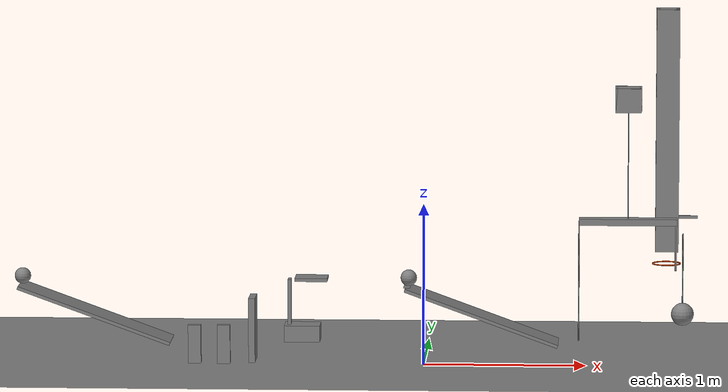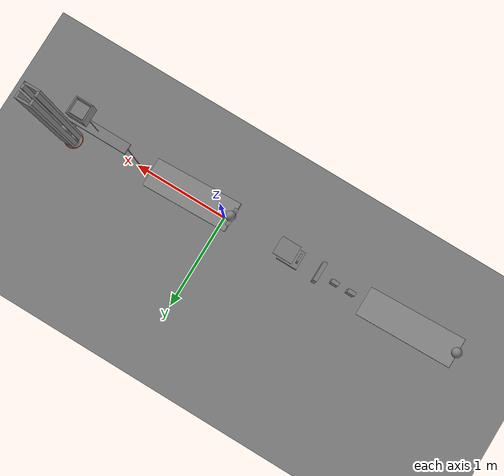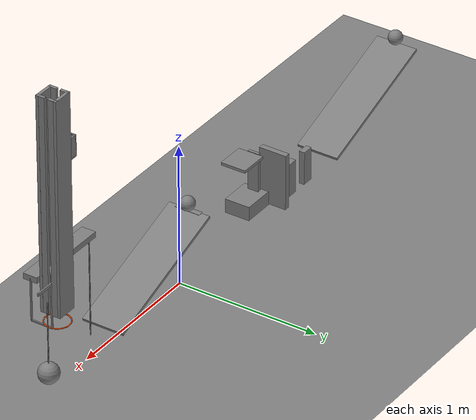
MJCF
<mujoco model="gravity_chain_with_level_starting_seat">
  <compiler angle="radian"/>
  <option timestep="0.002"/>
  <worldbody>
    <geom name="floor" type="plane" size="12 12 0.1" friction="0.7 0 0"/>
    <body name="ramp1">
      <geom name="ramp1" type="box" pos="-2.03015 0 0.311613" size="0.5 0.15 0.01" euler="0 0.349066 0" friction="0.7 0 0" solref="0.01 0.690107"/>
    </body>
    <body name="ball1" pos="-2.47948 0 0.539005">
      <freejoint/>
      <geom name="ball1" type="sphere" pos="0 0 0" size="0.05" mass="0.2" condim="6" friction="0.7 0 0" solref="0.01 0.690107"/>
    </body>
    <body name="domino1" pos="-1.41689 0 0.12">
      <freejoint/>
      <geom name="domino1" type="box" pos="0 0 0" size="0.04 0.02 0.12" mass="0.25" friction="0.7 0 0" solref="0.01 0.690107"/>
    </body>
    <body name="domino2" pos="-1.23689 0 0.12">
      <freejoint/>
      <geom name="domino2" type="box" pos="0 0 0" size="0.04 0.02 0.12" mass="0.25" friction="0.7 0 0" solref="0.01 0.690107"/>
    </body>
    <body name="flap1" pos="-1.05689 0 0.02">
      <joint name="flap1_hinge" type="hinge" pos="0 0 0" axis="0 1 0" limited="true" range="0 1.13446" damping="0.04"/>
      <geom name="flap1" type="box" pos="0 0 0.2" size="0.02 0.1 0.2" mass="0.3" friction="0.7 0 0" solref="0.01 0.690107"/>
    </body>
    <body name="cart1" pos="-0.746887 0 0.2">
      <joint name="cart1_slide" type="slide" pos="0 0 0" axis="1 0 0" limited="true" range="0 0.58" damping="0.2"/>
      <geom name="cart1" type="box" pos="0 0 0" size="0.11 0.09 0.05" mass="0.5" friction="0.7 0 0" solref="0.01 0.690107"/>
      <geom name="cart1 pusher post" type="box" pos="-0.08 0 0.19" size="0.01 0.04 0.14" mass="0" friction="0.7 0 0" solref="0.01 0.690107"/>
      <geom name="cart1 pusher arm" type="box" pos="0.055 0 0.335" size="0.1 0.09 0.01" mass="0" friction="0.7 0 0" solref="0.01 0.690107"/>
    </body>
    <body name="ramp2">
      <geom name="ramp2" type="box" pos="0.357438 0 0.311613" size="0.5 0.15 0.01" euler="0 0.349066 0" friction="0.7 0 0" solref="0.01 0.690107"/>
    </body>
    <body name="ball2 start seat">
      <geom name="ball2 start seat" type="box" pos="-0.101887 0 0.491005" size="0.02 0.09 0.001" friction="0.7 0 0" solref="0.01 0.690107"/>
    </body>
    <body name="ball2" pos="-0.0918872 0 0.542005">
      <freejoint/>
      <geom name="ball2" type="sphere" pos="0 0 0" size="0.05" mass="0.2" condim="6" friction="0.7 0 0" solref="0.01 0.690107"/>
    </body>
    <body name="lever1" pos="1.2547 0 0.9">
      <joint name="lever1_hinge" type="hinge" pos="0 0 0" axis="0 1 0" limited="true" range="-0.785398 0" stiffness="0.55" springref="-0.785398" damping="0.04"/>
      <geom name="lever1" type="box" pos="0 0 0" size="0.3 0.05 0.02" mass="0.5" friction="0.7 0 0" solref="0.01 0.690107"/>
      <geom name="lever1 striker" type="capsule" size="0.004" fromto="-0.3 0 0 -0.3 0 -0.74" mass="0" friction="0.7 0 0" solref="0.01 0.690107"/>
      <geom name="lever1 counterweight mast" type="capsule" size="0.003" fromto="0 0 0 0 0 0.685" mass="0" friction="0.7 0 0" solref="0.01 0.690107"/>
      <geom name="lever1 cradle base" type="box" pos="0 0 0.685" size="0.08 0.08 0.005" mass="0" friction="0.7 0 0" solref="0.01 0.690107"/>
      <geom name="lever1 cradle near wall" type="box" pos="-0.075 0 0.755" size="0.005 0.08 0.075" mass="0" friction="0.7 0 0" solref="0.01 0.690107"/>
      <geom name="lever1 cradle far wall" type="box" pos="0.075 0 0.755" size="0.005 0.08 0.075" mass="0" friction="0.7 0 0" solref="0.01 0.690107"/>
      <geom name="lever1 cradle left wall" type="box" pos="0 0.075 0.755" size="0.08 0.005 0.075" mass="0" friction="0.7 0 0" solref="0.01 0.690107"/>
      <geom name="lever1 cradle right wall" type="box" pos="0 -0.075 0.755" size="0.08 0.005 0.075" mass="0" friction="0.7 0 0" solref="0.01 0.690107"/>
      <geom name="lever1 launch drop" type="box" pos="0.295 0 -0.15" size="0.005 0.005 0.15" mass="0" friction="0.7 0 0" solref="0.01 0.690107"/>
      <geom name="lever1 launch bridge" type="box" pos="0.295 0.075 -0.3" size="0.005 0.075 0.005" mass="0" friction="0.7 0 0" solref="0.01 0.690107"/>
      <geom name="lever1 launch riser" type="box" pos="0.295 0.15 -0.15" size="0.005 0.005 0.15" mass="0" friction="0.7 0 0" solref="0.01 0.690107"/>
      <geom name="lever1 launch rail" type="box" pos="0.31 0.15 0.01" size="0.12 0.005 0.01" mass="0" friction="0.7 0 0" solref="0.01 0.690107"/>
    </body>
    <body name="counterweight" pos="1.2547 0 1.65">
      <freejoint/>
      <geom name="counterweight" type="box" pos="0 0 0" size="0.06 0.06 0.06" mass="0.35" friction="0.7 0 0" solref="0.01 0.690107"/>
    </body>
    <body name="ball3" pos="1.4947 0.15 0.97">
      <freejoint/>
      <geom name="ball3" type="sphere" pos="0 0 0" size="0.05" mass="0.2" condim="6" friction="0.7 0 0" solref="0.01 0.690107"/>
    </body>
    <body name="launch guide left">
      <geom name="launch guide left" type="box" pos="1.4947 0.212 1.45" size="0.071 0.01 0.75" friction="0.7 0 0" solref="0.01 0.690107"/>
    </body>
    <body name="launch guide right">
      <geom name="launch guide right" type="box" pos="1.4947 0.088 1.45" size="0.071 0.01 0.75" friction="0.7 0 0" solref="0.01 0.690107"/>
    </body>
    <body name="launch guide near left">
      <geom name="launch guide near left" type="box" pos="1.43411 0.191 1.45" size="0.01 0.029 0.75" friction="0.7 0 0" solref="0.01 0.690107"/>
    </body>
    <body name="launch guide near right">
      <geom name="launch guide near right" type="box" pos="1.43411 0.109 1.45" size="0.01 0.029 0.75" friction="0.7 0 0" solref="0.01 0.690107"/>
    </body>
    <body name="launch guide far left">
      <geom name="launch guide far left" type="box" pos="1.5553 0.191 1.45" size="0.01 0.029 0.75" friction="0.7 0 0" solref="0.01 0.690107"/>
    </body>
    <body name="launch guide far right">
      <geom name="launch guide far right" type="box" pos="1.5553 0.109 1.45" size="0.01 0.029 0.75" friction="0.7 0 0" solref="0.01 0.690107"/>
    </body>
    <body name="ring1">
      <geom name="ring1_rim_00" type="capsule" size="0.004" fromto="1.5787 0.166709 0.62 1.56592 0.197582 0.62" friction="0.7 0 0" solref="0.01 0.690107" rgba="0.9 0.3 0.05 1"/>
      <geom name="ring1_rim_01" type="capsule" size="0.004" fromto="1.56592 0.197582 0.62 1.54229 0.221212 0.62" friction="0.7 0 0" solref="0.01 0.690107" rgba="0.9 0.3 0.05 1"/>
      <geom name="ring1_rim_02" type="capsule" size="0.004" fromto="1.54229 0.221212 0.62 1.51141 0.234 0.62" friction="0.7 0 0" solref="0.01 0.690107" rgba="0.9 0.3 0.05 1"/>
      <geom name="ring1_rim_03" type="capsule" size="0.004" fromto="1.51141 0.234 0.62 1.478 0.234 0.62" friction="0.7 0 0" solref="0.01 0.690107" rgba="0.9 0.3 0.05 1"/>
      <geom name="ring1_rim_04" type="capsule" size="0.004" fromto="1.478 0.234 0.62 1.44712 0.221212 0.62" friction="0.7 0 0" solref="0.01 0.690107" rgba="0.9 0.3 0.05 1"/>
      <geom name="ring1_rim_05" type="capsule" size="0.004" fromto="1.44712 0.221212 0.62 1.42349 0.197582 0.62" friction="0.7 0 0" solref="0.01 0.690107" rgba="0.9 0.3 0.05 1"/>
      <geom name="ring1_rim_06" type="capsule" size="0.004" fromto="1.42349 0.197582 0.62 1.4107 0.166709 0.62" friction="0.7 0 0" solref="0.01 0.690107" rgba="0.9 0.3 0.05 1"/>
      <geom name="ring1_rim_07" type="capsule" size="0.004" fromto="1.4107 0.166709 0.62 1.4107 0.133291 0.62" friction="0.7 0 0" solref="0.01 0.690107" rgba="0.9 0.3 0.05 1"/>
      <geom name="ring1_rim_08" type="capsule" size="0.004" fromto="1.4107 0.133291 0.62 1.42349 0.102418 0.62" friction="0.7 0 0" solref="0.01 0.690107" rgba="0.9 0.3 0.05 1"/>
      <geom name="ring1_rim_09" type="capsule" size="0.004" fromto="1.42349 0.102418 0.62 1.44712 0.0787882 0.62" friction="0.7 0 0" solref="0.01 0.690107" rgba="0.9 0.3 0.05 1"/>
      <geom name="ring1_rim_10" type="capsule" size="0.004" fromto="1.44712 0.0787882 0.62 1.478 0.066 0.62" friction="0.7 0 0" solref="0.01 0.690107" rgba="0.9 0.3 0.05 1"/>
      <geom name="ring1_rim_11" type="capsule" size="0.004" fromto="1.478 0.066 0.62 1.51141 0.066 0.62" friction="0.7 0 0" solref="0.01 0.690107" rgba="0.9 0.3 0.05 1"/>
      <geom name="ring1_rim_12" type="capsule" size="0.004" fromto="1.51141 0.066 0.62 1.54229 0.0787882 0.62" friction="0.7 0 0" solref="0.01 0.690107" rgba="0.9 0.3 0.05 1"/>
      <geom name="ring1_rim_13" type="capsule" size="0.004" fromto="1.54229 0.0787882 0.62 1.56592 0.102418 0.62" friction="0.7 0 0" solref="0.01 0.690107" rgba="0.9 0.3 0.05 1"/>
      <geom name="ring1_rim_14" type="capsule" size="0.004" fromto="1.56592 0.102418 0.62 1.5787 0.133291 0.62" friction="0.7 0 0" solref="0.01 0.690107" rgba="0.9 0.3 0.05 1"/>
      <geom name="ring1_rim_15" type="capsule" size="0.004" fromto="1.5787 0.133291 0.62 1.5787 0.166709 0.62" friction="0.7 0 0" solref="0.01 0.690107" rgba="0.9 0.3 0.05 1"/>
    </body>
    <body name="pendulum1" pos="1.5947 0.15 0.803668">
      <joint name="pendulum1_hinge" type="hinge" pos="0 0 0" axis="0 1 0" limited="true" range="-1.5708 1.5708" damping="0.04"/>
      <geom name="pendulum1" type="sphere" pos="0 0 -0.5" size="0.07" mass="0.33" friction="0.7 0 0" solref="0.01 0.690107"/>
      <geom name="pendulum1 rod" type="capsule" size="0.004" fromto="0 0 0 0 0 -0.43" mass="0.02" friction="0.7 0 0" solref="0.01 0.690107"/>
    </body>
  </worldbody>
  <keyframe>
    <key name="start" qpos="-2.47948 0 0.539005 1 0 0 0 -1.41689 0 0.12 1 0 0 0 -1.23689 0 0.12 1 0 0 0 0 0 -0.0918872 0 0.542005 1 0 0 0 0 1.2547 0 1.65 1 0 0 0 1.4947 0.15 0.97 1 0 0 0 0" qvel="0 0 0 0 0 0 0 0 0 0 0 0 0 0 0 0 0 0 0 0 0 0 0 0 0 0 0 0 0 0 0 0 0 0 0 0 0 0 0 0"/>
  </keyframe>
</mujoco>
